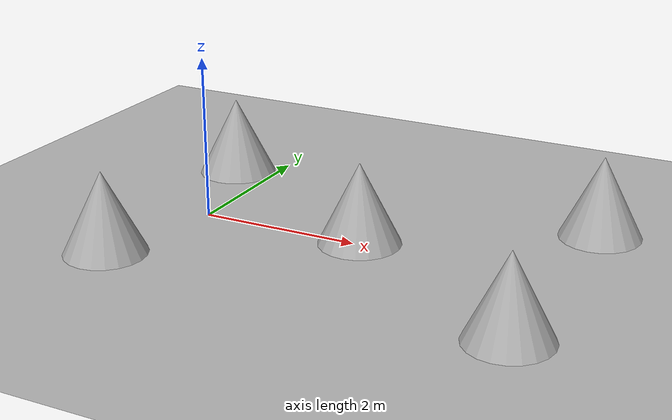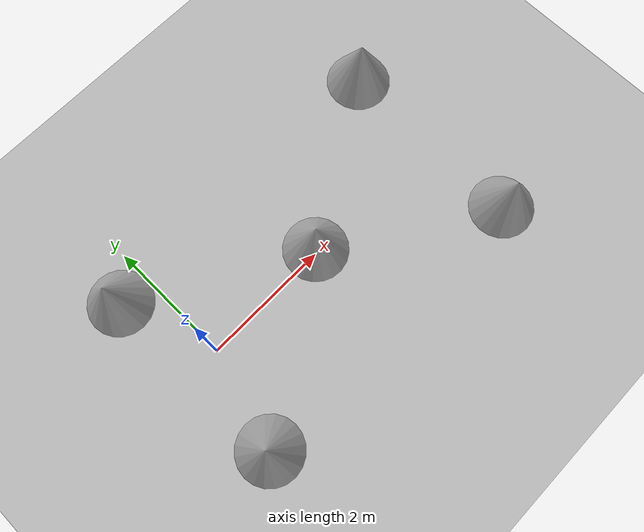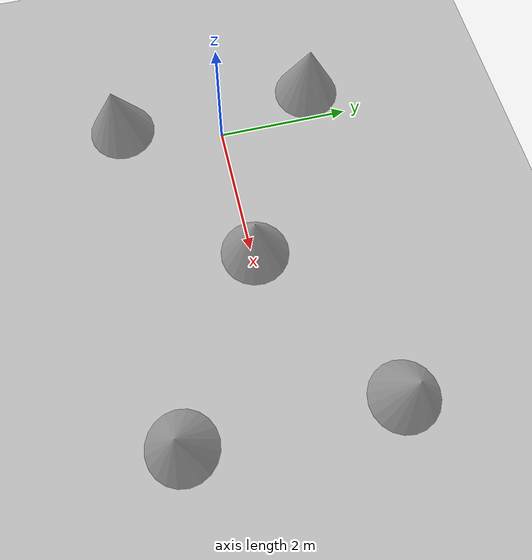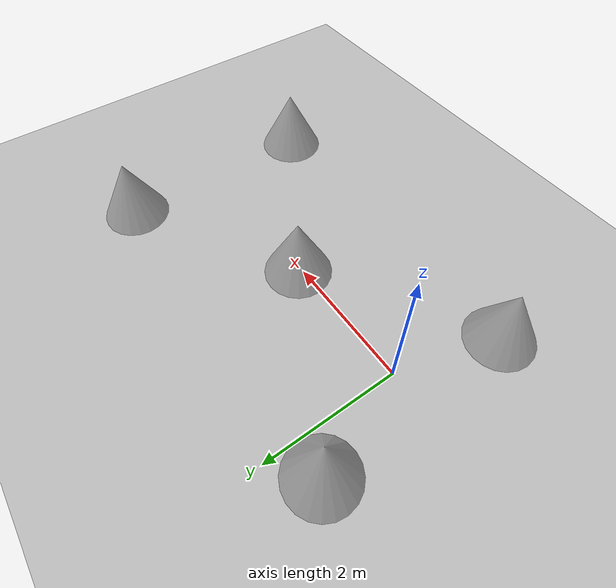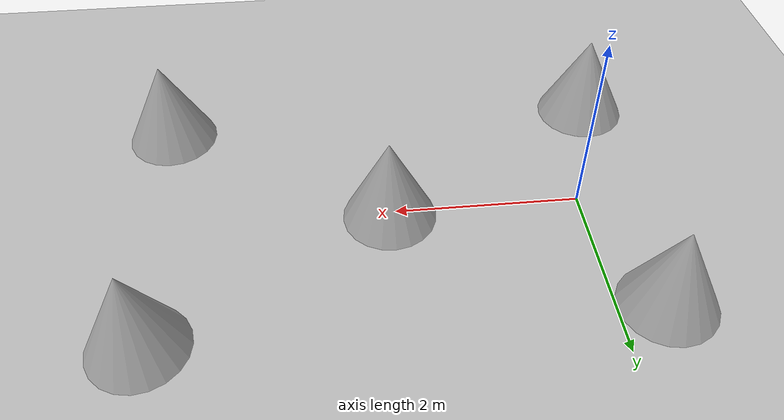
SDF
<sdf version='1.10'>
  <world name='default'>
    <plugin name='gz::sim::systems::Physics' filename='gz-sim-physics-system'/>
    <plugin name='gz::sim::systems::UserCommands' filename='gz-sim-user-commands-system'/>
    <plugin name='gz::sim::systems::SceneBroadcaster' filename='gz-sim-scene-broadcaster-system'/>
    <plugin name='gz::sim::systems::Sensors' filename='gz-sim-sensors-system'>
      <render_engine>ogre2</render_engine>
    </plugin>
    <plugin name='gz::sim::systems::Imu' filename='gz-sim-imu-system'/>
    <scene>
      <shadows>false</shadows>
      <ambient>0.400000006 0.400000006 0.400000006 1</ambient>
      <background>0.699999988 0.699999988 0.699999988 1</background>
    </scene>
    <gui fullscreen='false'>
      <camera name='user_camera'>
        <pose>0.31965399999999999 -0.23500199999999999 9.2944099999999992 3.0452191594958514e-17 1.5138000000000067 0.0095990000000000207</pose>
        <view_controller>orbit</view_controller>
        <projection_type>perspective</projection_type>
      </camera>
    </gui>
    <physics type='ode'>
      <real_time_update_rate>1000</real_time_update_rate>
      <max_step_size>0.001</max_step_size>
      <real_time_factor>1</real_time_factor>
      <ode>
        <solver>
          <type>quick</type>
          <iters>150</iters>
          <precon_iters>0</precon_iters>
          <sor>1.3999999999999999</sor>
          <use_dynamic_moi_rescaling>true</use_dynamic_moi_rescaling>
        </solver>
        <constraints>
          <cfm>1.0000000000000001e-05</cfm>
          <erp>0.20000000000000001</erp>
          <contact_max_correcting_vel>2000</contact_max_correcting_vel>
          <contact_surface_layer>0.01</contact_surface_layer>
        </constraints>
      </ode>
    </physics>
    <gravity>0 0 -9.8000000000000007</gravity>
    <magnetic_field>5.5644999999999998e-06 2.2875799999999999e-05 -4.2388400000000002e-05</magnetic_field>
    <atmosphere type='adiabatic'/>
    <model name='ground_plane'>
      <static>true</static>
      <link name='link'>
        <collision name='collision'>
          <geometry>
            <plane>
              <normal>0 0 1</normal>
              <size>100 100</size>
            </plane>
          </geometry>
          <surface>
            <friction>
              <ode>
                <mu>100</mu>
                <mu2>50</mu2>
              </ode>
            </friction>
            <bounce/>
            <contact/>
          </surface>
        </collision>
        <visual name='visual'>
          <cast_shadows>false</cast_shadows>
          <geometry>
            <plane>
              <normal>0 0 1</normal>
              <size>100 100</size>
            </plane>
          </geometry>
          <material>
            <ambient>0.300000012 0.300000012 0.300000012 1</ambient>
            <diffuse>0.699999988 0.699999988 0.699999988 1</diffuse>
            <specular>0.00999999978 0.00999999978 0.00999999978 1</specular>
          </material>
        </visual>
        <pose>0 0 0 0 0 0</pose>
        <inertial>
          <pose>0 0 0 0 0 0</pose>
          <mass>1</mass>
          <inertia>
            <ixx>1</ixx>
            <ixy>0</ixy>
            <ixz>0</ixz>
            <iyy>1</iyy>
            <iyz>0</iyz>
            <izz>1</izz>
          </inertia>
        </inertial>
        <enable_wind>false</enable_wind>
      </link>
      <pose>0 0 0 0 0 0</pose>
      <self_collide>false</self_collide>
    </model>
    <model name='cone'>
      <pose>-0.49748953861599571 1.5022808394778391 0.49999999993296756 5.2547073215441616e-17 -7.7132841038554062e-10 -2.0198410485697863e-22</pose>
      <link name='cone_link'>
        <inertial>
          <inertia>
            <ixx>0.074999999999999997</ixx>
            <ixy>0</ixy>
            <ixz>0</ixz>
            <iyy>0.074999999999999997</iyy>
            <iyz>0</iyz>
            <izz>0.074999999999999997</izz>
          </inertia>
          <mass>1</mass>
          <pose>0 0 0 0 0 0</pose>
        </inertial>
        <collision name='cone_collision'>
          <geometry>
            <cone>
              <radius>0.5</radius>
              <length>1</length>
            </cone>
          </geometry>
          <surface>
            <friction>
              <ode/>
            </friction>
            <bounce/>
            <contact/>
          </surface>
        </collision>
        <visual name='cone_visual'>
          <geometry>
            <cone>
              <radius>0.5</radius>
              <length>1</length>
            </cone>
          </geometry>
          <material>
            <ambient>0.300000012 0.300000012 0.300000012 1</ambient>
            <diffuse>0.699999988 0.699999988 0.699999988 1</diffuse>
            <specular>1 1 1 1</specular>
          </material>
        </visual>
        <pose>0 0 0 0 0 0</pose>
        <enable_wind>false</enable_wind>
      </link>
      <static>false</static>
      <self_collide>false</self_collide>
    </model>
    <model name='cone_0'>
      <pose>-0.42775249626657136 -1.5142414569565976 0.49999999993296756 5.2541471503228405e-17 -7.7132841033694056e-10 -2.8937183272912105e-22</pose>
      <link name='cone_link'>
        <inertial>
          <inertia>
            <ixx>0.074999999999999997</ixx>
            <ixy>0</ixy>
            <ixz>0</ixz>
            <iyy>0.074999999999999997</iyy>
            <iyz>0</iyz>
            <izz>0.074999999999999997</izz>
          </inertia>
          <mass>1</mass>
          <pose>0 0 0 0 0 0</pose>
        </inertial>
        <collision name='cone_collision'>
          <geometry>
            <cone>
              <radius>0.5</radius>
              <length>1</length>
            </cone>
          </geometry>
          <surface>
            <friction>
              <ode/>
            </friction>
            <bounce/>
            <contact/>
          </surface>
        </collision>
        <visual name='cone_visual'>
          <geometry>
            <cone>
              <radius>0.5</radius>
              <length>1</length>
            </cone>
          </geometry>
          <material>
            <ambient>0.300000012 0.300000012 0.300000012 1</ambient>
            <diffuse>0.699999988 0.699999988 0.699999988 1</diffuse>
            <specular>1 1 1 1</specular>
          </material>
        </visual>
        <pose>0 0 0 0 0 0</pose>
        <enable_wind>false</enable_wind>
      </link>
      <static>false</static>
      <self_collide>false</self_collide>
    </model>
    <model name='cone_1'>
      <pose>2.0646652822147056 0.052234380456284965 0.49999944596352192 6.1022625287217155e-07 -8.4052220605572685e-07 0.054766809255302279</pose>
      <link name='cone_link'>
        <inertial>
          <inertia>
            <ixx>0.074999999999999997</ixx>
            <ixy>0</ixy>
            <ixz>0</ixz>
            <iyy>0.074999999999999997</iyy>
            <iyz>0</iyz>
            <izz>0.074999999999999997</izz>
          </inertia>
          <mass>1</mass>
          <pose>0 0 0 0 0 0</pose>
        </inertial>
        <collision name='cone_collision'>
          <geometry>
            <cone>
              <radius>0.5</radius>
              <length>1</length>
            </cone>
          </geometry>
          <surface>
            <friction>
              <ode/>
            </friction>
            <bounce/>
            <contact/>
          </surface>
        </collision>
        <visual name='cone_visual'>
          <geometry>
            <cone>
              <radius>0.5</radius>
              <length>1</length>
            </cone>
          </geometry>
          <material>
            <ambient>0.300000012 0.300000012 0.300000012 1</ambient>
            <diffuse>0.699999988 0.699999988 0.699999988 1</diffuse>
            <specular>1 1 1 1</specular>
          </material>
        </visual>
        <pose>0 0 0 0 0 0</pose>
        <enable_wind>false</enable_wind>
      </link>
      <static>false</static>
      <self_collide>false</self_collide>
    </model>
    <model name='cone_2'>
      <pose>4.5002415404598723 -1.4821225003834049 0.49999999993296756 5.254112337112289e-17 -7.7132841035481852e-10 1.1756787404075212e-22</pose>
      <link name='cone_link'>
        <inertial>
          <inertia>
            <ixx>0.074999999999999997</ixx>
            <ixy>0</ixy>
            <ixz>0</ixz>
            <iyy>0.074999999999999997</iyy>
            <iyz>0</iyz>
            <izz>0.074999999999999997</izz>
          </inertia>
          <mass>1</mass>
          <pose>0 0 0 0 0 0</pose>
        </inertial>
        <collision name='cone_collision'>
          <geometry>
            <cone>
              <radius>0.5</radius>
              <length>1</length>
            </cone>
          </geometry>
          <surface>
            <friction>
              <ode/>
            </friction>
            <bounce/>
            <contact/>
          </surface>
        </collision>
        <visual name='cone_visual'>
          <geometry>
            <cone>
              <radius>0.5</radius>
              <length>1</length>
            </cone>
          </geometry>
          <material>
            <ambient>0.300000012 0.300000012 0.300000012 1</ambient>
            <diffuse>0.699999988 0.699999988 0.699999988 1</diffuse>
            <specular>1 1 1 1</specular>
          </material>
        </visual>
        <pose>0 0 0 0 0 0</pose>
        <enable_wind>false</enable_wind>
      </link>
      <static>false</static>
      <self_collide>false</self_collide>
    </model>
    <model name='cone_4'>
      <pose>4.5237423106607615 1.5127876949952417 0.49999999993296756 5.2539673238603227e-17 -7.7132841034849224e-10 -2.2042306062451038e-22</pose>
      <link name='cone_link'>
        <inertial>
          <inertia>
            <ixx>0.074999999999999997</ixx>
            <ixy>0</ixy>
            <ixz>0</ixz>
            <iyy>0.074999999999999997</iyy>
            <iyz>0</iyz>
            <izz>0.074999999999999997</izz>
          </inertia>
          <mass>1</mass>
          <pose>0 0 0 0 0 0</pose>
        </inertial>
        <collision name='cone_collision'>
          <geometry>
            <cone>
              <radius>0.5</radius>
              <length>1</length>
            </cone>
          </geometry>
          <surface>
            <friction>
              <ode/>
            </friction>
            <bounce/>
            <contact/>
          </surface>
        </collision>
        <visual name='cone_visual'>
          <geometry>
            <cone>
              <radius>0.5</radius>
              <length>1</length>
            </cone>
          </geometry>
          <material>
            <ambient>0.300000012 0.300000012 0.300000012 1</ambient>
            <diffuse>0.699999988 0.699999988 0.699999988 1</diffuse>
            <specular>1 1 1 1</specular>
          </material>
        </visual>
        <pose>0 0 0 0 0 0</pose>
        <enable_wind>false</enable_wind>
      </link>
      <static>false</static>
      <self_collide>false</self_collide>
    </model>
    <light name='sun' type='directional'>
      <pose>0 0 10 0 0 0</pose>
      <cast_shadows>true</cast_shadows>
      <intensity>1</intensity>
      <direction>-0.5 0.10000000000000001 -0.90000000000000002</direction>
      <diffuse>0.800000012 0.800000012 0.800000012 1</diffuse>
      <specular>0.200000003 0.200000003 0.200000003 1</specular>
      <attenuation>
        <range>1000</range>
        <linear>0.0099999997764825821</linear>
        <constant>0.89999997615814209</constant>
        <quadratic>0.0010000000474974513</quadratic>
      </attenuation>
      <spot>
        <inner_angle>0</inner_angle>
        <outer_angle>0</outer_angle>
        <falloff>0</falloff>
      </spot>
    </light>
  </world>
</sdf>
